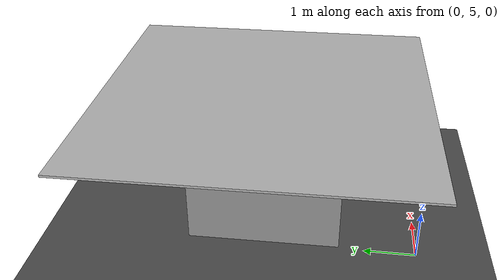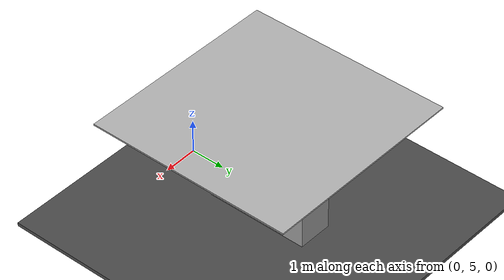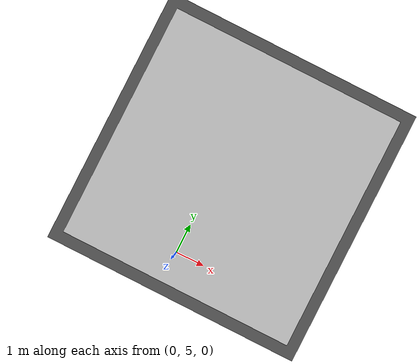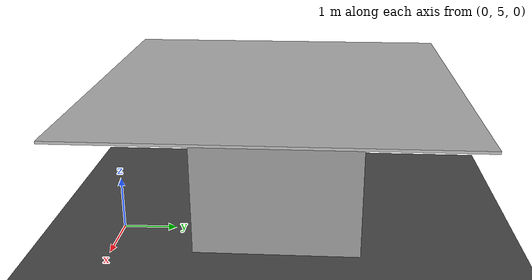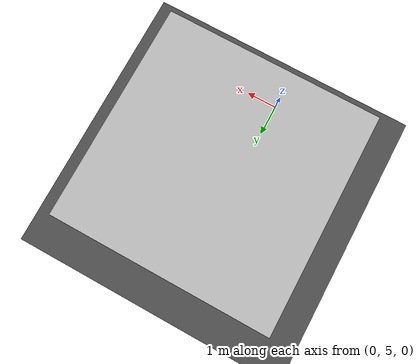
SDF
<sdf version="1.6">
 <world name="default">
  <light name="sun" type="directional">
   <pose>0 0 100 0 0 0</pose>
   <diffuse>0.8 0.8 0.8 1</diffuse>
   <specular>0.2 0.2 0.2 1</specular>
   <attenuation>
    <range>1000</range>
    <constant>0.9</constant>
    <linear>0.01</linear>
    <quadratic>0.001</quadratic>
   </attenuation>
   <direction>-0.5 0.1 -0.9</direction>
  </light>
  <plugin name="ros_interface_plugin" filename="librotors_gazebo_ros_interface_plugin.so"/>
  <model name="ground_plane">
   <static>1</static>
   <link name="link">
    <collision name="collision">
     <geometry><plane><normal>0 0 1</normal><size>100 100</size></plane></geometry>
     <surface>
      <contact><collide_bitmask>65535</collide_bitmask></contact>
      <friction><ode><mu>100</mu><mu2>50</mu2></ode></friction>
     </surface>
    </collision>
    <visual name="visual">
     <cast_shadows>0</cast_shadows>
     <geometry><plane><normal>0 0 1</normal><size>100 100</size></plane></geometry>
     <material>
      <script><uri>file://media/materials/scripts/gazebo.material</uri><name>Gazebo/Grey</name></script>
     </material>
    </visual>
   </link>
  </model>
  <gravity>0 0 -9.8</gravity>
  <magnetic_field>6e-06 2.3e-05 -4.2e-05</magnetic_field>
  <atmosphere type="adiabatic"/>
  <physics name="default_physics" default="0" type="ode">
   <max_step_size>0.001</max_step_size>
   <real_time_factor>1</real_time_factor>
   <real_time_update_rate>1000</real_time_update_rate>
  </physics>
  <scene><ambient>0.4 0.4 0.4 1</ambient><grid>false</grid><sky><clouds><speed>4</speed></clouds></sky></scene>
  <audio><device>default</device></audio>
  <spherical_coordinates>
   <surface_model>EARTH_WGS84</surface_model>
   <latitude_deg>0</latitude_deg>
   <longitude_deg>0</longitude_deg>
   <elevation>0</elevation>
   <heading_deg>0</heading_deg>
  </spherical_coordinates>
  <model name="asphalt_plane">
   <static>1</static>
   <link name="link">
    <collision name="collision"><geometry><box><size>100 100 0.1</size></box></geometry></collision>
    <visual name="visual">
     <cast_shadows>0</cast_shadows>
     <geometry><box><size>100 100 0.1</size></box></geometry>
     <material>
      <script>
       <uri>model://asphalt_plane/materials/scripts</uri>
       <uri>model://asphalt_plane/materials/textures</uri>
       <name>vrc/asphalt</name>
      </script>
     </material>
    </visual>
   </link>
  </model>
  <model name="unit_box">
   <pose>0.500187 7.99694 1.55 0 0 -9.5e-05</pose>
   <link name="link">
    <inertial>
     <mass>1</mass>
     <inertia>
      <ixx>0.166667</ixx>
      <ixy>0</ixy>
      <ixz>0</ixz>
      <iyy>0.166667</iyy>
      <iyz>0</iyz>
      <izz>0.166667</izz>
     </inertia>
    </inertial>
    <collision name="collision"><geometry><box><size>1 3 3</size></box></geometry></collision>
    <visual name="visual">
     <geometry><box><size>1 3 3</size></box></geometry>
     <material>
      <script><name>Gazebo/Grey</name><uri>file://media/materials/scripts/gazebo.material</uri></script>
     </material>
    </visual>
   </link>
  </model>
  <model name="rmurv2_2020_marker_new">
   <static>1</static>
   <link name="link">
    <collision name="collision"><geometry><box><size>6 6 0.04</size></box></geometry></collision>
    <visual name="visual">
     <cast_shadows>0</cast_shadows>
     <geometry><box><size>6 6 0.04</size></box></geometry>
     <material>
      <script>
       <uri>model://rmurv2_2020_marker_new/materials/scripts</uri>
       <uri>model://rmurv2_2020_marker_new/materials/textures</uri>
       <name>vrc/rmurv2_2020_marker_new</name>
      </script>
     </material>
    </visual>
   </link>
   <pose>0.5 8 3.1 0 -0 0</pose>
  </model>
 </world>
</sdf>
